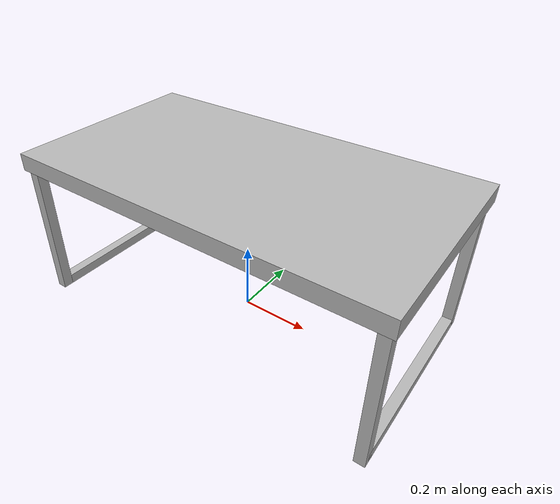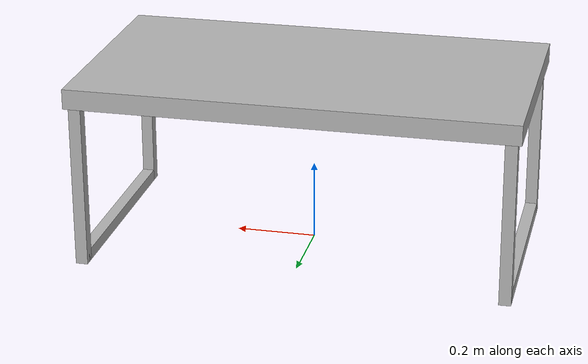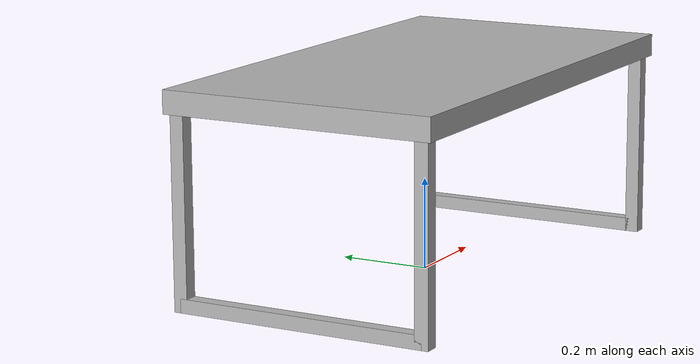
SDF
<?xml version="1.0"?>
<sdf version="1.6">
  <model name="rwc2017/table_salon">
    <link name="1_link">
      <collision name="1_col">
        <geometry>
          <box>
            <size>1.1 0.6 0.05</size>
          </box>
        </geometry>
      </collision>
      <visual name="1_vis">
        <geometry>
          <box>
            <size>1.1 0.6 0.05</size>
          </box>
        </geometry>
      </visual>
      <pose>0 0 0.435 0 0 0</pose>
    </link>
    <link name="2_link">
      <collision name="2_col">
        <geometry>
          <box>
            <size>0.03 0.03 0.41</size>
          </box>
        </geometry>
      </collision>
      <visual name="2_vis">
        <geometry>
          <box>
            <size>0.03 0.03 0.41</size>
          </box>
        </geometry>
      </visual>
      <pose>-0.525 -0.275 0.205 0 0 0</pose>
    </link>
    <link name="3_link">
      <collision name="3_col">
        <geometry>
          <box>
            <size>0.03 0.03 0.41</size>
          </box>
        </geometry>
      </collision>
      <visual name="3_vis">
        <geometry>
          <box>
            <size>0.03 0.03 0.41</size>
          </box>
        </geometry>
      </visual>
      <pose>0.525 -0.275 0.205 0 0 0</pose>
    </link>
    <link name="4_link">
      <collision name="4_col">
        <geometry>
          <box>
            <size>0.03 0.03 0.41</size>
          </box>
        </geometry>
      </collision>
      <visual name="4_vis">
        <geometry>
          <box>
            <size>0.03 0.03 0.41</size>
          </box>
        </geometry>
      </visual>
      <pose>-0.525 0.275 0.205 0 0 0</pose>
    </link>
    <link name="5_link">
      <collision name="5_col">
        <geometry>
          <box>
            <size>0.03 0.03 0.41</size>
          </box>
        </geometry>
      </collision>
      <visual name="5_vis">
        <geometry>
          <box>
            <size>0.03 0.03 0.41</size>
          </box>
        </geometry>
      </visual>
      <pose>0.525 0.275 0.205 0 0 0</pose>
    </link>
    <link name="6_link">
      <collision name="6_col">
        <geometry>
          <box>
            <size>0.03 0.55 0.03</size>
          </box>
        </geometry>
      </collision>
      <visual name="6_vis">
        <geometry>
          <box>
            <size>0.03 0.55 0.03</size>
          </box>
        </geometry>
      </visual>
      <pose>0.525 0.0 0.015 0 0 0</pose>
    </link>
    <link name="7_link">
      <collision name="7_col">
        <geometry>
          <box>
            <size>0.03 0.55 0.03</size>
          </box>
        </geometry>
      </collision>
      <visual name="7_vis">
        <geometry>
          <box>
            <size>0.03 0.55 0.03</size>
          </box>
        </geometry>
      </visual>
      <pose>-0.525 0.0 0.015 0 0 0</pose>
    </link>
    <link name="on_top_of">
      <virtual_volume name="on_top_of_vv">
        <geometry>
          <box>
            <size>1.04 0.54 0.25</size>
          </box>
        </geometry>
        <pose>0.0 0.0 0.605 0 0 0</pose>
      </virtual_volume>
    </link>
    <link name="in_front_of">
      <virtual_volume name="in_front_of_vv">
        <geometry>
          <box>
            <size>0.2 0.4 0.01</size>
          </box>
        </geometry>
        <pose>1.05 0.0 0.005 0 0 0</pose>
      </virtual_volume>
    </link>
    <static>true</static>
  </model>
</sdf>
